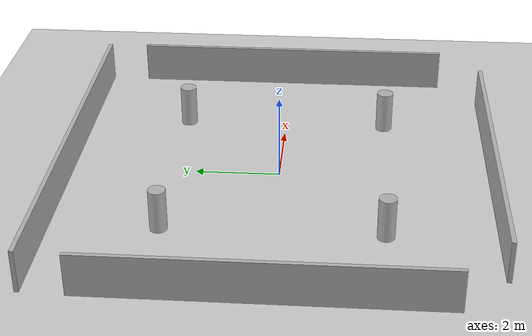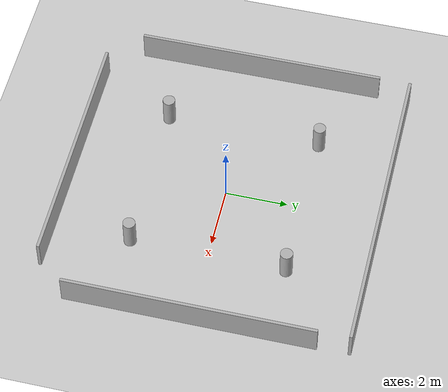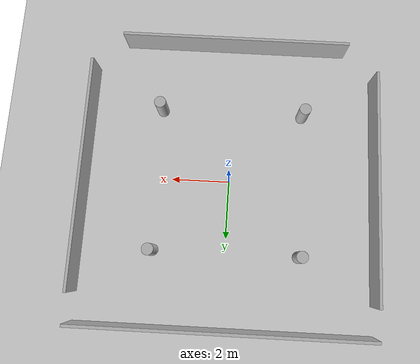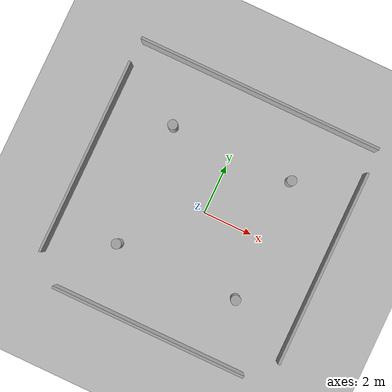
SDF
<sdf version="1.7">
 <world name="empty">
  <physics type="ode"><max_step_size>0.003</max_step_size><real_time_factor>1</real_time_factor></physics>
  <plugin name="gz::sim::systems::Physics" filename="gz-sim-physics-system"/>
  <plugin name="gz::sim::systems::UserCommands" filename="gz-sim-user-commands-system"/>
  <plugin name="gz::sim::systems::SceneBroadcaster" filename="gz-sim-scene-broadcaster-system"/>
  <plugin name="gz::sim::systems::Contact" filename="gz-sim-contact-system"/>
  <gravity>0 0 -9.8000000000000007</gravity>
  <magnetic_field>5.5644999999999998e-06 2.2875799999999999e-05 -4.2388400000000002e-05</magnetic_field>
  <atmosphere type="adiabatic"/>
  <scene>
   <ambient>0.400000006 0.400000006 0.400000006 1</ambient>
   <background>0.699999988 0.699999988 0.699999988 1</background>
   <shadows>true</shadows>
  </scene>
  <model name="ground_plane">
   <static>true</static>
   <link name="link">
    <collision name="collision">
     <geometry><plane><normal>0 0 1</normal><size>100 100</size></plane></geometry>
    </collision>
    <visual name="visual">
     <geometry><plane><normal>0 0 1</normal><size>100 100</size></plane></geometry>
     <material>
      <ambient>0.800000012 0.800000012 0.800000012 1</ambient>
      <diffuse>0.800000012 0.800000012 0.800000012 1</diffuse>
      <specular>0.800000012 0.800000012 0.800000012 1</specular>
     </material>
    </visual>
    <inertial>
     <mass>1</mass>
     <inertia><ixx>1</ixx><ixy>0</ixy><ixz>0</ixz><iyy>1</iyy><iyz>0</iyz><izz>1</izz></inertia>
    </inertial>
   </link>
  </model>
  <model name="box">
   <pose>0 5 0.5 0 0 0</pose>
   <link name="box_link">
    <inertial>
     <inertia><ixx>0.16666</ixx><ixy>0</ixy><ixz>0</ixz><iyy>0.16666</iyy><iyz>0</iyz><izz>0.16666</izz></inertia>
     <mass>1</mass>
    </inertial>
    <collision name="box_collision"><geometry><box><size>10 0.1 1</size></box></geometry></collision>
    <visual name="box_visual">
     <geometry><box><size>10 0.1 1</size></box></geometry>
     <material>
      <ambient>0.300000012 0.300000012 0.300000012 1</ambient>
      <diffuse>0.699999988 0.699999988 0.699999988 1</diffuse>
      <specular>1 1 1 1</specular>
     </material>
    </visual>
   </link>
   <static>true</static>
  </model>
  <model name="box_0">
   <pose>0 -5 0.5 0 0 0</pose>
   <link name="box_link">
    <inertial>
     <inertia><ixx>0.16666</ixx><ixy>0</ixy><ixz>0</ixz><iyy>0.16666</iyy><iyz>0</iyz><izz>0.16666</izz></inertia>
     <mass>1</mass>
    </inertial>
    <collision name="box_collision"><geometry><box><size>8 0.1 1</size></box></geometry></collision>
    <visual name="box_visual">
     <geometry><box><size>8 0.1 1</size></box></geometry>
     <material>
      <ambient>0.300000012 0.300000012 0.300000012 1</ambient>
      <diffuse>0.699999988 0.699999988 0.699999988 1</diffuse>
      <specular>1 1 1 1</specular>
     </material>
    </visual>
   </link>
   <static>true</static>
  </model>
  <model name="box_1">
   <pose>-5 0 0.5 0 0 0</pose>
   <link name="box_link">
    <inertial>
     <inertia><ixx>0.16666</ixx><ixy>0</ixy><ixz>0</ixz><iyy>0.16666</iyy><iyz>0</iyz><izz>0.16666</izz></inertia>
     <mass>1</mass>
    </inertial>
    <collision name="box_collision"><geometry><box><size>0.1 8 1</size></box></geometry></collision>
    <visual name="box_visual">
     <geometry><box><size>0.1 8 1</size></box></geometry>
     <material>
      <ambient>0.300000012 0.300000012 0.300000012 1</ambient>
      <diffuse>0.699999988 0.699999988 0.699999988 1</diffuse>
      <specular>1 1 1 1</specular>
     </material>
    </visual>
   </link>
   <static>true</static>
  </model>
  <model name="box_2">
   <pose>5 0 0.5 0 0 0</pose>
   <link name="box_link">
    <inertial>
     <inertia><ixx>0.16666</ixx><ixy>0</ixy><ixz>0</ixz><iyy>0.16666</iyy><iyz>0</iyz><izz>0.16666</izz></inertia>
     <mass>1</mass>
    </inertial>
    <collision name="box_collision"><geometry><box><size>0.1 8 1</size></box></geometry></collision>
    <visual name="box_visual">
     <geometry><box><size>0.1 8 1</size></box></geometry>
     <material>
      <ambient>0.300000012 0.300000012 0.300000012 1</ambient>
      <diffuse>0.699999988 0.699999988 0.699999988 1</diffuse>
      <specular>1 1 1 1</specular>
     </material>
    </visual>
   </link>
   <static>true</static>
  </model>
  <model name="cylinder">
   <pose>2.5 -2.5 0.5 0 0 0</pose>
   <link name="cylinder_link">
    <inertial>
     <inertia>
      <ixx>0.14580000000000001</ixx>
      <ixy>0</ixy>
      <ixz>0</ixz>
      <iyy>0.14580000000000001</iyy>
      <iyz>0</iyz>
      <izz>0.125</izz>
     </inertia>
     <mass>1</mass>
    </inertial>
    <collision name="cylinder_collision">
     <geometry><cylinder><radius>0.2</radius><length>1</length></cylinder></geometry>
    </collision>
    <visual name="cylinder_visual">
     <geometry><cylinder><radius>0.2</radius><length>1</length></cylinder></geometry>
     <material>
      <ambient>0.300000012 0.300000012 0.300000012 1</ambient>
      <diffuse>0.699999988 0.699999988 0.699999988 1</diffuse>
      <specular>1 1 1 1</specular>
     </material>
    </visual>
   </link>
   <static>true</static>
  </model>
  <model name="cylinder_0">
   <pose>2.5 2.5 0.5 0 0 0</pose>
   <link name="cylinder_link">
    <inertial>
     <inertia>
      <ixx>0.14580000000000001</ixx>
      <ixy>0</ixy>
      <ixz>0</ixz>
      <iyy>0.14580000000000001</iyy>
      <iyz>0</iyz>
      <izz>0.125</izz>
     </inertia>
     <mass>1</mass>
    </inertial>
    <collision name="cylinder_collision">
     <geometry><cylinder><radius>0.2</radius><length>1</length></cylinder></geometry>
    </collision>
    <visual name="cylinder_visual">
     <geometry><cylinder><radius>0.2</radius><length>1</length></cylinder></geometry>
     <material>
      <ambient>0.300000012 0.300000012 0.300000012 1</ambient>
      <diffuse>0.699999988 0.699999988 0.699999988 1</diffuse>
      <specular>1 1 1 1</specular>
     </material>
    </visual>
   </link>
   <static>true</static>
  </model>
  <model name="cylinder_1">
   <pose>-2.5 2.5 0.5 0 0 0</pose>
   <link name="cylinder_link">
    <inertial>
     <inertia>
      <ixx>0.14580000000000001</ixx>
      <ixy>0</ixy>
      <ixz>0</ixz>
      <iyy>0.14580000000000001</iyy>
      <iyz>0</iyz>
      <izz>0.125</izz>
     </inertia>
     <mass>1</mass>
    </inertial>
    <collision name="cylinder_collision">
     <geometry><cylinder><radius>0.2</radius><length>1</length></cylinder></geometry>
    </collision>
    <visual name="cylinder_visual">
     <geometry><cylinder><radius>0.2</radius><length>1</length></cylinder></geometry>
     <material>
      <ambient>0.300000012 0.300000012 0.300000012 1</ambient>
      <diffuse>0.699999988 0.699999988 0.699999988 1</diffuse>
      <specular>1 1 1 1</specular>
     </material>
    </visual>
   </link>
   <static>true</static>
  </model>
  <model name="cylinder_2">
   <pose>-2.5 -2.5 0.5 0 0 0</pose>
   <link name="cylinder_link">
    <inertial>
     <inertia>
      <ixx>0.14580000000000001</ixx>
      <ixy>0</ixy>
      <ixz>0</ixz>
      <iyy>0.14580000000000001</iyy>
      <iyz>0</iyz>
      <izz>0.125</izz>
     </inertia>
     <mass>1</mass>
    </inertial>
    <collision name="cylinder_collision">
     <geometry><cylinder><radius>0.2</radius><length>1</length></cylinder></geometry>
    </collision>
    <visual name="cylinder_visual">
     <geometry><cylinder><radius>0.2</radius><length>1</length></cylinder></geometry>
     <material>
      <ambient>0.300000012 0.300000012 0.300000012 1</ambient>
      <diffuse>0.699999988 0.699999988 0.699999988 1</diffuse>
      <specular>1 1 1 1</specular>
     </material>
    </visual>
   </link>
   <static>true</static>
  </model>
  <light name="sun" type="directional">
   <pose>0 0 10 0 0 0</pose>
   <intensity>1</intensity>
   <direction>-0.5 0.10000000000000001 -0.90000000000000002</direction>
   <diffuse>0.800000012 0.800000012 0.800000012 1</diffuse>
   <specular>0.200000003 0.200000003 0.200000003 1</specular>
   <attenuation>
    <range>1000</range>
    <linear>0.01</linear>
    <constant>0.90000000000000002</constant>
    <quadratic>0.001</quadratic>
   </attenuation>
   <spot><inner_angle>0</inner_angle><outer_angle>0</outer_angle><falloff>0</falloff></spot>
  </light>
 </world>
</sdf>
